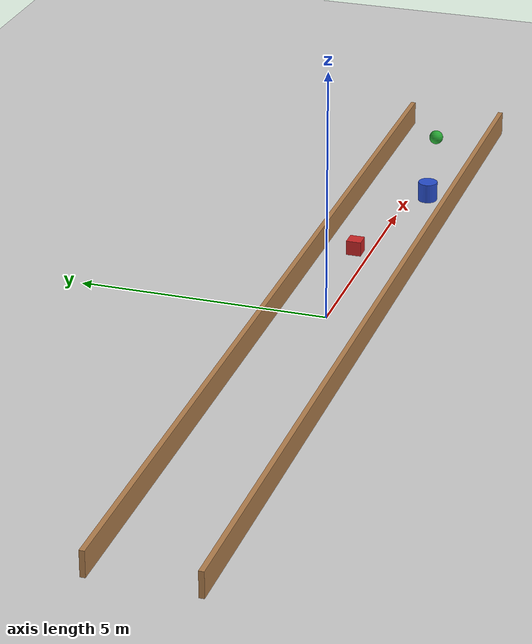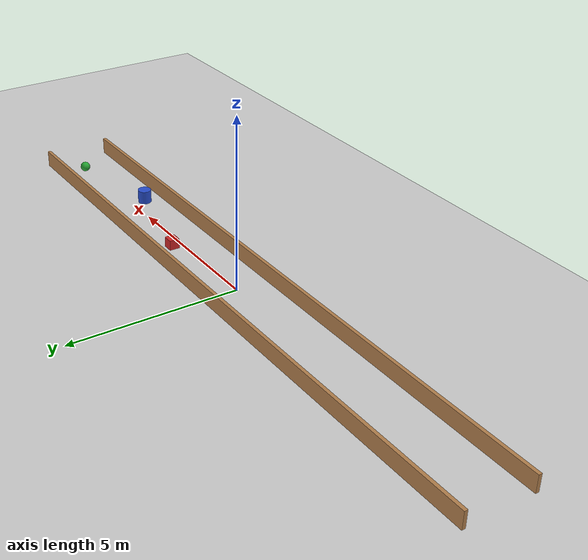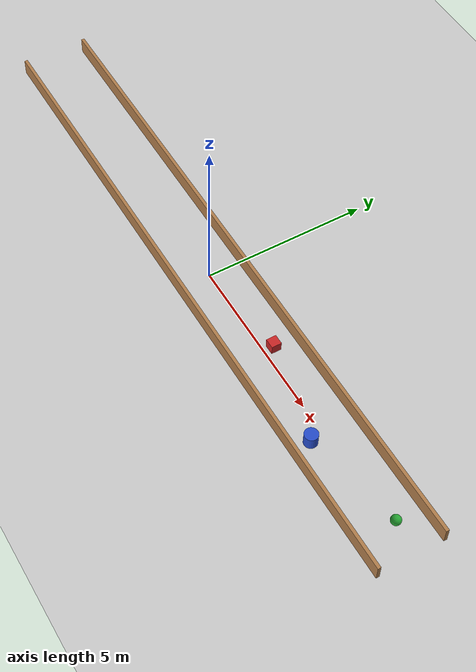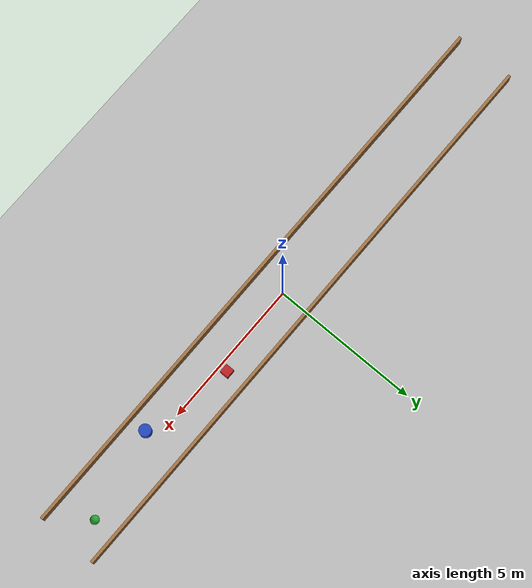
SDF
<?xml version="1.0" ?>
<sdf version="1.6">
  <world name="mechdog_open_path">

    <!-- Physics settings -->
    <physics type="ode">
      <max_step_size>0.001</max_step_size>
      <real_time_factor>1.0</real_time_factor>
      <real_time_update_rate>1000</real_time_update_rate>
      <gravity>0 0 -9.81</gravity>
    </physics>

    <!-- Scene settings -->
    <scene>
      <ambient>0.4 0.4 0.4 1</ambient>
      <background>0.7 0.7 0.7 1</background>
      <shadows>true</shadows>
    </scene>

    <!-- Lighting -->
    <light name="sun" type="directional">
      <cast_shadows>true</cast_shadows>
      <pose>0 0 10 0 0 0</pose>
      <diffuse>0.8 0.8 0.8 1</diffuse>
      <specular>0.2 0.2 0.2 1</specular>
      <attenuation>
        <range>1000</range>
        <constant>0.9</constant>
        <linear>0.01</linear>
        <quadratic>0.001</quadratic>
      </attenuation>
      <direction>-0.5 0.1 -0.9</direction>
    </light>

    <!-- Ground plane -->
    <model name="ground_plane">
      <static>true</static>
      <link name="link">
        <collision name="collision">
          <geometry>
            <plane>
              <normal>0 0 1</normal>
              <size>100 100</size>
            </plane>
          </geometry>
          <surface>
            <friction>
              <ode>
                <mu>0.8</mu>
                <mu2>0.8</mu2>
              </ode>
            </friction>
          </surface>
        </collision>
        <visual name="visual">
          <cast_shadows>false</cast_shadows>
          <geometry>
            <plane>
              <normal>0 0 1</normal>
              <size>100 100</size>
            </plane>
          </geometry>
          <material>
            <script>
              <uri>file://media/materials/scripts/gazebo.material</uri>
              <name>Gazebo/Grey</name>
            </script>
          </material>
        </visual>
      </link>
    </model>

    <!-- Path boundaries (walls) -->
    <!-- Left wall -->
    <model name="left_wall">
      <static>true</static>
      <pose>0 1.0 0.25 0 0 0</pose>
      <link name="link">
        <collision name="collision">
          <geometry>
            <box>
              <size>20.0 0.1 0.5</size>
            </box>
          </geometry>
        </collision>
        <visual name="visual">
          <geometry>
            <box>
              <size>20.0 0.1 0.5</size>
            </box>
          </geometry>
          <material>
            <script>
              <uri>file://media/materials/scripts/gazebo.material</uri>
              <name>Gazebo/Wood</name>
            </script>
          </material>
        </visual>
      </link>
    </model>

    <!-- Right wall -->
    <model name="right_wall">
      <static>true</static>
      <pose>0 -1.0 0.25 0 0 0</pose>
      <link name="link">
        <collision name="collision">
          <geometry>
            <box>
              <size>20.0 0.1 0.5</size>
            </box>
          </geometry>
        </collision>
        <visual name="visual">
          <geometry>
            <box>
              <size>20.0 0.1 0.5</size>
            </box>
          </geometry>
          <material>
            <script>
              <uri>file://media/materials/scripts/gazebo.material</uri>
              <name>Gazebo/Wood</name>
            </script>
          </material>
        </visual>
      </link>
    </model>

    <!-- Obstacles along the path -->
    <!-- Obstacle 1: Box -->
    <model name="obstacle_box_1">
      <static>true</static>
      <pose>3.0 0.3 0.15 0 0 0</pose>
      <link name="link">
        <collision name="collision">
          <geometry>
            <box>
              <size>0.3 0.3 0.3</size>
            </box>
          </geometry>
        </collision>
        <visual name="visual">
          <geometry>
            <box>
              <size>0.3 0.3 0.3</size>
            </box>
          </geometry>
          <material>
            <script>
              <uri>file://media/materials/scripts/gazebo.material</uri>
              <name>Gazebo/Red</name>
            </script>
          </material>
        </visual>
      </link>
    </model>

    <!-- Obstacle 2: Cylinder -->
    <model name="obstacle_cylinder_1">
      <static>true</static>
      <pose>6.0 -0.4 0.2 0 0 0</pose>
      <link name="link">
        <collision name="collision">
          <geometry>
            <cylinder>
              <radius>0.2</radius>
              <length>0.4</length>
            </cylinder>
          </geometry>
        </collision>
        <visual name="visual">
          <geometry>
            <cylinder>
              <radius>0.2</radius>
              <length>0.4</length>
            </cylinder>
          </geometry>
          <material>
            <script>
              <uri>file://media/materials/scripts/gazebo.material</uri>
              <name>Gazebo/Blue</name>
            </script>
          </material>
        </visual>
      </link>
    </model>

    <!-- Obstacle 3: Sphere -->
    <model name="obstacle_sphere_1">
      <static>true</static>
      <pose>9.0 0.2 0.15 0 0 0</pose>
      <link name="link">
        <collision name="collision">
          <geometry>
            <sphere>
              <radius>0.15</radius>
            </sphere>
          </geometry>
        </collision>
        <visual name="visual">
          <geometry>
            <sphere>
              <radius>0.15</radius>
            </sphere>
          </geometry>
          <material>
            <script>
              <uri>file://media/materials/scripts/gazebo.material</uri>
              <name>Gazebo/Green</name>
            </script>
          </material>
        </visual>
      </link>
    </model>

    <!-- Additional obstacles can be added here -->

    <!-- GUI settings -->
    <gui fullscreen='0'>
      <camera name='user_camera'>
        <pose>-5.0 0.0 8.0 0 0.8 0</pose>
        <view_controller>orbit</view_controller>
      </camera>
    </gui>

  </world>
</sdf>
